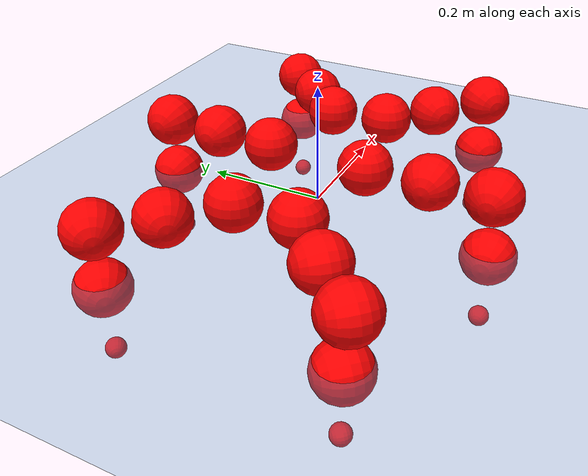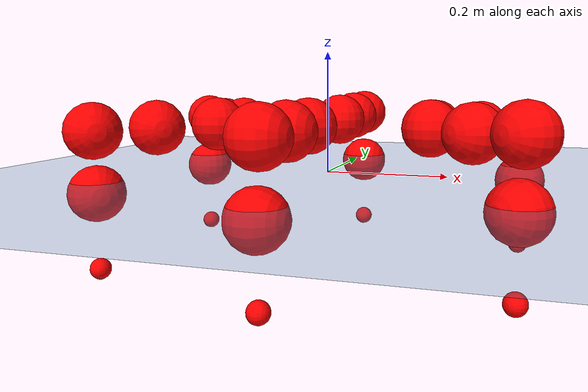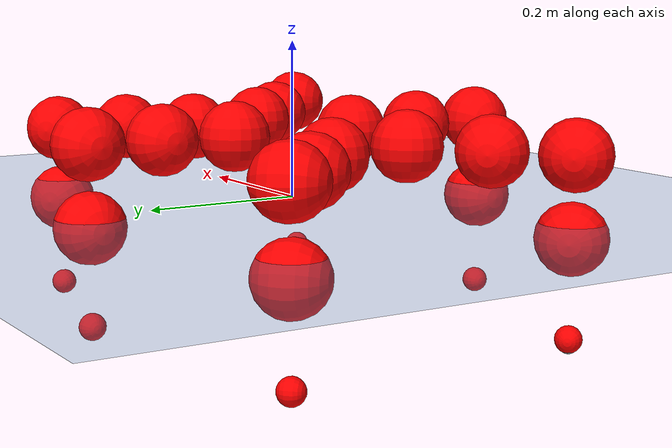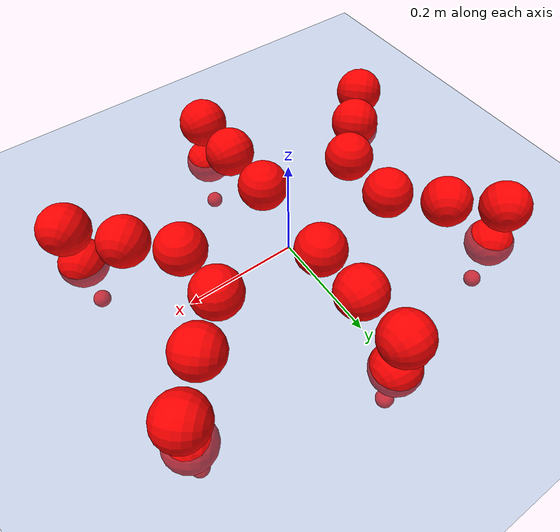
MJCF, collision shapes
<mujoco model="Golem">
  <compiler angle="radian" assetdir="assets" balanceinertia="true" inertiafromgeom="false"/>

  <option timestep="0.005" density="1.2" viscosity="2e-05"/>

  <size nkey="1"/>

  <visual>
    <quality shadowsize="8192"/>
    <map shadowclip="0.5"/>
  </visual>

  <default>
    <default class="/">
      <joint armature="0.01" damping="0.01" frictionloss="0.01"/>
      <geom contype="0" conaffinity="0" group="1" solref="-1000 -80"/>
      <site size="0.01 0.005 0.005" group="5"/>
      <general forcelimited="true" biastype="affine" gainprm="25" biasprm="0 -25 -0.5"/>
      <default class="visual">
        <geom type="mesh" group="2"/>
      </default>
      <default class="collision">
        <geom group="3"/>
      </default>
      <default class="foot">
        <geom size="0.01 0 0" condim="6" group="4" priority="1" solimp="0.015 1 0.01"/>
      </default>
      <default class="reward_collision_sphere">
        <geom group="5" rgba="1 0 0 1"/>
      </default>
    </default>
  </default>

  <asset>
    <texture type="skybox" colorspace="auto" name="//unnamed_texture_0" builtin="gradient" rgb1="0.95 0.95 0.95" rgb2="0.95 0.95 0.95" width="100" height="600"/>
    <texture type="2d" colorspace="auto" name="texplane" builtin="checker" rgb1="0.345 0.575 0.748" rgb2="0.345 0.575 0.748" markrgb="1 1 1" width="512" height="512"/>
    <material name="MatPlane" class="/" texture="texplane" texuniform="true" texrepeat="2 2" specular="0.9"/>
    <mesh name="body" class="/" file="body.stl" scale="0.001 0.001 0.001"/>
    <mesh name="coxa" class="/" file="coxa.stl" scale="0.001 0.001 0.001"/>
    <mesh name="femur" class="/" file="femur.stl" scale="0.001 0.001 0.001"/>
    <mesh name="tibia" class="/" file="tibia.stl" scale="0.001 0.001 0.001"/>
    <mesh name="tarsus" class="/" file="tarsus.stl" scale="0.001 0.001 0.001"/>
  </asset>

  <worldbody>
    <geom name="floor" class="/" size="100 100 0.125" type="plane" group="0" material="MatPlane"/>
    <light name="toplight_shadow" class="/" pos="0 0 5" dir="0.0990148 0.0990148 -0.990148" type="directional" ambient="0.04 0.04 0.04" diffuse="0.55 0.55 0.55" specular="0.12 0.12 0.12"/>
    <light name="toplight_fill" class="/" pos="0 0 5" dir="0.0990148 0.0990148 -0.990148" type="directional" castshadow="false" ambient="0.04 0.04 0.04" diffuse="0.3 0.3 0.3" specular="0.08 0.08 0.08"/>
    <body name="trunk" pos="0.000211202 -0.00241997 0.000859306" quat="0.999999 0.000220852 -0.00125322 -0.000210312">
      <inertial pos="0.00155834 -0.00144203 -0.00288863" quat="0.999955 0.00470216 0.0025753 -0.00788097" mass="5.19206" diaginertia="0.0170221 0.00609666 0.0355611"/>
      <joint name="//unnamed_joint_0" type="free"/>
      <geom name="//unnamed_geom_1" class="/" pos="0 0 0.0825019" quat="1 0 0 0" type="mesh" rgba="0.9 0.9 0.9 1" mesh="body"/>
      <site name="imu" class="/" pos="0.134522 -0.0145954 0.100832" size="0.011065"/>
      <camera name="track" class="/" pos="0 -1.81729 0" quat="0.707107 0.707107 0 0" mode="trackcom"/>
      <camera name="ego_camera" class="/" pos="0.145829 0 0.128909" quat="-0.5 -0.5 0.5 0.5"/>
      <body name="coxa_RR" pos="-0.199154 -0.0763266 0.0814432" quat="0.380434 0.00171779 5.38856e-05 -0.924806">
        <inertial pos="-0.00196606 0.00195629 8.36299e-05" quat="0.999985 -0.00448154 -0.00273159 0.00152795" mass="0.252247" diaginertia="0.0168063 0.00572515 0.0318219"/>
        <joint name="coxa_joint_RR" class="/" pos="0 0 0" axis="-0.00127657 -0.00358308 -0.999993" stiffness="0.00363451" range="-3.1155 3.09791" armature="0.0126121" damping="0" frictionloss="0.0119355"/>
        <geom name="//unnamed_geom_2" class="/" type="mesh" rgba="0.2 0.2 0.2 1" mesh="coxa"/>
        <geom name="//unnamed_geom_3" class="reward_collision_sphere" size="0.04426" pos="-0.0336529 0 0"/>
        <body name="femur_RR" pos="0.0674107 -0.000628773 -0.00224048" quat="0.500947 -0.500373 0.500677 0.497998">
          <inertial pos="0.000358885 -0.00532754 0.00021077" quat="0.999994 0.00220857 -0.00256921 -0.000639727" mass="0.288772" diaginertia="0.0184823 0.00640279 0.0372535"/>
          <joint name="femur_joint_RR" class="/" pos="0 0 0" axis="0.0041534 -0.0088062 -0.999953" stiffness="0.000474381" range="-3.10147 3.10122" armature="0.0094801" damping="0.0201581" frictionloss="0.0112821"/>
          <geom name="//unnamed_geom_4" class="/" type="mesh" rgba="0.9 0.9 0.9 1" mesh="femur"/>
          <geom name="//unnamed_geom_5" class="reward_collision_sphere" size="0.04426"/>
          <body name="tibia_RR" pos="0.00124373 -0.0976165 0.00121035" quat="3.36718e-05 1 -0.00037642 0.000113904">
            <inertial pos="0.000940051 -0.00450618 0.00239982" quat="1 7.44567e-05 -0.000161022 6.8837e-05" mass="0.27391" diaginertia="0.017858 0.00630799 0.035504"/>
            <joint name="tibia_joint_RR" class="/" pos="0 0 0" axis="-0.00646545 0.0191677 0.999795" stiffness="0.0128222" range="-3.22995 3.18508" armature="0.0110807" damping="0.0271974" frictionloss="0.00762524"/>
            <geom name="//unnamed_geom_6" class="/" type="mesh" rgba="0.2 0.2 0.2 1" mesh="tibia"/>
            <geom name="//unnamed_geom_7" class="reward_collision_sphere" size="0.04426"/>
            <body name="tarsus_RR" pos="0.0979082 -0.00207643 0.00492305" quat="1 -5.05925e-05 -5.6521e-06 8.13749e-05">
              <inertial pos="0.0685279 -0.00213467 -0.00142906" quat="0.498934 0.499861 0.502348 0.498849" mass="0.284328" diaginertia="0.0191413 0.00630232 0.0343662"/>
              <joint name="tarsus_joint_RR" class="/" pos="0 0 0" axis="-0.000608208 -0.00394573 0.999992" stiffness="0.00798033" range="-3.14037 3.10225" armature="0.010065" damping="0" frictionloss="0.0123175"/>
              <geom name="//unnamed_geom_8" class="/" type="mesh" rgba="0.9 0.9 0.9 1" mesh="tarsus"/>
              <geom name="foot_1" class="foot" size="0.0123361" pos="0.125637 0 0" quat="0 -0.707107 0 0.707107"/>
              <geom name="//unnamed_geom_10" class="reward_collision_sphere" size="0.04426"/>
              <geom name="//unnamed_geom_11" class="reward_collision_sphere" size="0.0165975" pos="0.12059 0 0"/>
              <site name="foot_1" class="foot" pos="0.125637 0 0" quat="0 -0.707107 0 0.707107" size="0.011065"/>
            </body>
          </body>
        </body>
      </body>
      <body name="coxa_RM" pos="-0.00583115 -0.116217 0.0830914" quat="0.70694 0.000618179 -0.000850618 -0.707273">
        <inertial pos="0.00186117 -0.000524216 0.00307028" quat="0.999612 0.0201973 0.0135812 0.0135219" mass="0.249952" diaginertia="0.0167818 0.00541663 0.0321889"/>
        <joint name="coxa_joint_RM" class="/" pos="0 0 0" axis="-0.00976513 0.023356 -0.99968" range="-3.14713 3.13337" armature="0.00982012" damping="0.0281574" frictionloss="0.0105261"/>
        <geom name="//unnamed_geom_12" class="/" type="mesh" rgba="0.2 0.2 0.2 1" mesh="coxa"/>
        <geom name="//unnamed_geom_13" class="reward_collision_sphere" size="0.04426" pos="-0.0336529 0 0"/>
        <body name="femur_RM" pos="0.0716276 0.00240683 0.000399326" quat="0.500931 -0.499878 0.499924 0.499266">
          <inertial pos="0.000117167 -0.00165111 -0.000491294" quat="0.999927 0.000359616 -0.0118365 0.00237155" mass="0.268815" diaginertia="0.0182837 0.00608683 0.0349851"/>
          <joint name="femur_joint_RM" class="/" pos="0 0 0" axis="4.625e-05 0.00078825 -1" stiffness="0.0151598" range="-3.19232 3.14918" armature="0.0101771" damping="0.0118147" frictionloss="0.00900714"/>
          <geom name="//unnamed_geom_14" class="/" type="mesh" rgba="0.9 0.9 0.9 1" mesh="femur"/>
          <geom name="//unnamed_geom_15" class="reward_collision_sphere" size="0.04426"/>
          <body name="tibia_RM" pos="-0.000838308 -0.097738 -0.000267917" quat="0.00061405 0.999999 -0.000951884 0.000513593">
            <inertial pos="0.00183618 0.00018027 -0.00214307" quat="0.999925 -0.00467372 -0.00377523 0.0106266" mass="0.255424" diaginertia="0.017555 0.00622709 0.0352967"/>
            <joint name="tibia_joint_RM" class="/" pos="0 0 0" axis="-0.00935532 0.0196118 0.999764" range="-3.11505 3.11385" armature="0.0136852" damping="0.0167643" frictionloss="0.00864298"/>
            <geom name="//unnamed_geom_16" class="/" type="mesh" rgba="0.2 0.2 0.2 1" mesh="tibia"/>
            <geom name="//unnamed_geom_17" class="reward_collision_sphere" size="0.04426"/>
            <body name="tarsus_RM" pos="0.105039 0.00453423 0.00256094" quat="1 -0.00030814 -0.000584009 0.000338849">
              <inertial pos="0.0674107 -0.00188062 0.000264679" quat="0.50074 0.499323 0.500164 0.499772" mass="0.249799" diaginertia="0.0165171 0.00587816 0.034023"/>
              <joint name="tarsus_joint_RM" class="/" pos="0 0 0" axis="0.00642182 0.00222942 0.999977" range="-3.10755 3.09023" armature="0.0105873" damping="0" frictionloss="0.0123805"/>
              <geom name="//unnamed_geom_18" class="/" type="mesh" rgba="0.9 0.9 0.9 1" mesh="tarsus"/>
              <geom name="foot_2" class="foot" size="0.0112774" pos="0.125637 0 0" quat="0 -0.707107 0 0.707107"/>
              <geom name="//unnamed_geom_20" class="reward_collision_sphere" size="0.04426"/>
              <geom name="//unnamed_geom_21" class="reward_collision_sphere" size="0.0165975" pos="0.12059 0 0"/>
              <site name="foot_2" class="foot" pos="0.125637 0 0" quat="0 -0.707107 0 0.707107" size="0.011065"/>
            </body>
          </body>
        </body>
      </body>
      <body name="coxa_RF" pos="0.201331 -0.0697263 0.0802539" quat="0.923935 -0.000450599 -1.24883e-05 -0.382548">
        <inertial pos="0.0046715 0.00207764 0.00211826" quat="0.999995 0.000617097 0.0029542 -0.000727715" mass="0.265472" diaginertia="0.0164653 0.00585166 0.0317375"/>
        <joint name="coxa_joint_RF" class="/" pos="0 0 0" axis="0.013979 0.00168728 -0.999901" stiffness="0.015581" range="-3.10273 3.15306" armature="0.00983194" damping="0" frictionloss="0.00891903"/>
        <geom name="//unnamed_geom_22" class="/" type="mesh" rgba="0.2 0.2 0.2 1" mesh="coxa"/>
        <geom name="//unnamed_geom_23" class="reward_collision_sphere" size="0.04426" pos="-0.0336529 0 0"/>
        <body name="femur_RF" pos="0.0623028 0.000111136 -0.000392511" quat="0.499283 -0.500034 0.501048 0.499633">
          <inertial pos="0.00239924 0.00018228 -0.00221142" quat="1 -0.000542184 1.18359e-06 -0.000358107" mass="0.266741" diaginertia="0.0179427 0.00607086 0.0357879"/>
          <joint name="femur_joint_RF" class="/" pos="0 0 0" axis="0.00437519 0.00813159 -0.999957" range="-3.12251 3.12157" armature="0.0117852" damping="0.0140229" frictionloss="0.0122857"/>
          <geom name="//unnamed_geom_24" class="/" type="mesh" rgba="0.9 0.9 0.9 1" mesh="femur"/>
          <geom name="//unnamed_geom_25" class="reward_collision_sphere" size="0.04426"/>
          <body name="tibia_RF" pos="-0.00652651 -0.100548 -0.00281897" quat="0.000641838 1 -4.97067e-05 -0.000390367">
            <inertial pos="0.000369295 0.00411521 0.00245685" quat="0.999826 0.0116334 0.0134987 0.00548015" mass="0.295368" diaginertia="0.0187142 0.00646232 0.0357994"/>
            <joint name="tibia_joint_RF" class="/" pos="0 0 0" axis="-0.00290467 -0.0187913 0.999819" stiffness="0.034411" range="-3.1507 3.15771" armature="0.0117164" damping="0.0385702" frictionloss="0.0112581"/>
            <geom name="//unnamed_geom_26" class="/" type="mesh" rgba="0.2 0.2 0.2 1" mesh="tibia"/>
            <geom name="//unnamed_geom_27" class="reward_collision_sphere" size="0.04426"/>
            <body name="tarsus_RF" pos="0.0993076 -0.00193287 0.00505489" quat="1 -1.94422e-06 -1.25754e-05 -1.72303e-05">
              <inertial pos="0.0701024 0.00242894 -0.0022861" quat="0.496853 0.502134 0.50571 0.495233" mass="0.273043" diaginertia="0.0174108 0.00635694 0.0363078"/>
              <joint name="tarsus_joint_RF" class="/" pos="0 0 0" axis="0.00828592 0.0269009 0.999604" stiffness="0.0037325" range="-3.18684 3.08969" armature="0.0101474" damping="0.00964254" frictionloss="0.0110311"/>
              <geom name="//unnamed_geom_28" class="/" type="mesh" rgba="0.9 0.9 0.9 1" mesh="tarsus"/>
              <geom name="foot_3" class="foot" size="0.0113583" pos="0.125637 0 0" quat="0 -0.707107 0 0.707107"/>
              <geom name="//unnamed_geom_30" class="reward_collision_sphere" size="0.04426"/>
              <geom name="//unnamed_geom_31" class="reward_collision_sphere" size="0.0165975" pos="0.12059 0 0"/>
              <site name="foot_3" class="foot" pos="0.125637 0 0" quat="0 -0.707107 0 0.707107" size="0.011065"/>
            </body>
          </body>
        </body>
      </body>
      <body name="coxa_LR" pos="-0.199191 0.0771785 0.0780206" quat="0.381783 0.00129399 -6.03795e-06 0.924251">
        <inertial pos="-0.000441442 -0.00273144 0.00326226" quat="0.999926 0.0103022 -0.00187092 -0.00623364" mass="0.274286" diaginertia="0.0178533 0.00647214 0.0365361"/>
        <joint name="coxa_joint_LR" class="/" pos="0 0 0" axis="-0.00346485 0.00926958 -0.999951" range="-3.15707 3.05909" armature="0.0114883" damping="0.0159731" frictionloss="0.0101845"/>
        <geom name="//unnamed_geom_32" class="/" type="mesh" rgba="0.2 0.2 0.2 1" mesh="coxa"/>
        <geom name="//unnamed_geom_33" class="reward_collision_sphere" size="0.04426" pos="-0.0336529 0 0"/>
        <body name="femur_LR" pos="0.0686434 -0.000749593 -0.00386051" quat="0.499822 -0.500357 0.499556 0.500265">
          <inertial pos="0.00206506 -0.00157134 0.0017858" quat="0.999716 0.0174522 -0.015005 -0.00624099" mass="0.260252" diaginertia="0.016812 0.00586172 0.0349392"/>
          <joint name="femur_joint_LR" class="/" pos="0 0 0" axis="0.0254086 -0.0213121 0.99945" range="-3.15275 3.16801" armature="0.00792127" damping="0.0129345" frictionloss="0.0112523"/>
          <geom name="//unnamed_geom_34" class="/" type="mesh" rgba="0.9 0.9 0.9 1" mesh="femur"/>
          <geom name="//unnamed_geom_35" class="reward_collision_sphere" size="0.04426"/>
          <body name="tibia_LR" pos="-0.00331306 -0.0978979 0.00158856" quat="0.000584386 1 -0.000672334 2.3233e-07">
            <inertial pos="-0.000299026 0.00182778 -0.00228558" quat="0.999978 0.000905087 -0.00336639 -0.00568661" mass="0.265825" diaginertia="0.0188501 0.00644627 0.0360914"/>
            <joint name="tibia_joint_LR" class="/" pos="0 0 0" axis="-0.000433464 -0.00566129 -0.999984" stiffness="0.00280136" range="-3.2356 3.10525" armature="0.0125273" damping="0.0105059" frictionloss="0.0112184"/>
            <geom name="//unnamed_geom_36" class="/" type="mesh" rgba="0.2 0.2 0.2 1" mesh="tibia"/>
            <geom name="//unnamed_geom_37" class="reward_collision_sphere" size="0.04426"/>
            <body name="tarsus_LR" pos="0.101779 0.000299387 -0.00194004" quat="1 -8.36944e-05 8.5235e-05 -6.0368e-05">
              <inertial pos="0.0672289 0.00347475 0.0025726" quat="0.499821 0.499038 0.500543 0.500597" mass="0.278478" diaginertia="0.0173897 0.00558778 0.0348665"/>
              <joint name="tarsus_joint_LR" class="/" pos="0 0 0" axis="-0.00185508 0.00275454 -0.999994" range="-3.18912 3.12973" armature="0.0108974" damping="0.0138369" frictionloss="0.0112502"/>
              <geom name="//unnamed_geom_38" class="/" type="mesh" rgba="0.9 0.9 0.9 1" mesh="tarsus"/>
              <geom name="foot_4" class="foot" size="0.0109532" pos="0.125637 0 0" quat="0.707107 0 -0.707107 0"/>
              <geom name="//unnamed_geom_40" class="reward_collision_sphere" size="0.04426"/>
              <geom name="//unnamed_geom_41" class="reward_collision_sphere" size="0.0165975" pos="0.12059 0 0"/>
              <site name="foot_4" class="foot" pos="0.125637 0 0" quat="0.707107 0 -0.707107 0" size="0.011065"/>
            </body>
          </body>
        </body>
      </body>
      <body name="coxa_LM" pos="-0.00255583 0.121041 0.0832869" quat="0.70678 -0.0011389 0.000387228 0.707433">
        <inertial pos="0.000981177 0.000597916 0.00452649" quat="0.999925 -0.00196351 -0.00138909 0.0119755" mass="0.273672" diaginertia="0.0184316 0.00638708 0.0369329"/>
        <joint name="coxa_joint_LM" class="/" pos="0 0 0" axis="0.000302896 -0.000209802 -1" stiffness="0.0118373" range="-3.18938 3.11958" armature="0.0121476" damping="0.0224266" frictionloss="0.0108784"/>
        <geom name="//unnamed_geom_42" class="/" type="mesh" rgba="0.2 0.2 0.2 1" mesh="coxa"/>
        <geom name="//unnamed_geom_43" class="reward_collision_sphere" size="0.04426" pos="-0.0336529 0 0"/>
        <body name="femur_LM" pos="0.0656597 -0.000123613 0.00191074" quat="0.499381 -0.50062 0.499594 0.500404">
          <inertial pos="0.00173004 -0.00137925 0.00589577" quat="0.999955 0.00487513 -0.00797508 0.00180413" mass="0.276337" diaginertia="0.0176047 0.00630471 0.0355879"/>
          <joint name="femur_joint_LM" class="/" pos="0 0 0" axis="0.000440034 0.000264119 1" stiffness="0.00513533" range="-3.09382 3.24962" armature="0.0112951" damping="0.0304179" frictionloss="0.0126968"/>
          <geom name="//unnamed_geom_44" class="/" type="mesh" rgba="0.9 0.9 0.9 1" mesh="femur"/>
          <geom name="//unnamed_geom_45" class="reward_collision_sphere" size="0.04426"/>
          <body name="tibia_LM" pos="-0.00144686 -0.0970946 0.000854861" quat="-0.000281614 1 0.000203683 1.67914e-05">
            <inertial pos="0.000964455 0.000288645 0.000816194" quat="0.999926 -0.00308995 0.00542371 0.0104169" mass="0.292087" diaginertia="0.0192205 0.00673713 0.038751"/>
            <joint name="tibia_joint_LM" class="/" pos="0 0 0" axis="0.00471906 0.0136847 -0.999895" stiffness="0.0110467" range="-3.19316 3.1323" armature="0.00743508" damping="0.0357191" frictionloss="0.00964195"/>
            <geom name="//unnamed_geom_46" class="/" type="mesh" rgba="0.2 0.2 0.2 1" mesh="tibia"/>
            <geom name="//unnamed_geom_47" class="reward_collision_sphere" size="0.04426"/>
            <body name="tarsus_LM" pos="0.10007 -0.000547427 -0.000335937" quat="1 1.08174e-05 3.17977e-05 -3.58433e-05">
              <inertial pos="0.0663153 0.00220059 -4.6356e-05" quat="0.498495 0.500154 0.500454 0.500895" mass="0.290804" diaginertia="0.0186008 0.00721448 0.037557"/>
              <joint name="tarsus_joint_LM" class="/" pos="0 0 0" axis="-0.000591828 -0.000591262 -1" range="-3.14466 3.14848" armature="0.00983444" damping="0" frictionloss="0.00808094"/>
              <geom name="//unnamed_geom_48" class="/" type="mesh" rgba="0.9 0.9 0.9 1" mesh="tarsus"/>
              <geom name="foot_5" class="foot" size="0.0110409" pos="0.125637 0 0" quat="0.707107 0 -0.707107 0"/>
              <geom name="//unnamed_geom_50" class="reward_collision_sphere" size="0.04426"/>
              <geom name="//unnamed_geom_51" class="reward_collision_sphere" size="0.0165975" pos="0.12059 0 0"/>
              <site name="foot_5" class="foot" pos="0.125637 0 0" quat="0.707107 0 -0.707107 0" size="0.011065"/>
            </body>
          </body>
        </body>
      </body>
      <body name="coxa_LF" pos="0.196125 0.0795768 0.0763971" quat="0.923799 -0.000447329 -0.000296203 0.382878">
        <inertial pos="0.00449424 0.00606888 0.00145832" quat="0.999946 0.00635892 0.00446095 -0.00685628" mass="0.278228" diaginertia="0.0182474 0.00684622 0.0356933"/>
        <joint name="coxa_joint_LF" class="/" pos="0 0 0" axis="-0.0192895 0.0117463 -0.999745" range="-3.13815 3.14432" armature="0.0121799" damping="0.021432" frictionloss="0.0121679"/>
        <geom name="//unnamed_geom_52" class="/" type="mesh" rgba="0.2 0.2 0.2 1" mesh="coxa"/>
        <geom name="//unnamed_geom_53" class="reward_collision_sphere" size="0.04426" pos="-0.0336529 0 0"/>
        <body name="femur_LF" pos="0.0642893 -0.00381716 -0.00360937" quat="0.50014 -0.500775 0.49952 0.499563">
          <inertial pos="-0.00083557 0.000166566 0.00192473" quat="1 -0.000337634 -0.00059051 -1.04372e-06" mass="0.289708" diaginertia="0.0196773 0.00648857 0.0370814"/>
          <joint name="femur_joint_LF" class="/" pos="0 0 0" axis="0.0136235 -0.0151649 0.999792" stiffness="0.00487483" range="-3.15345 3.09419" armature="0.012475" damping="0.00830602" frictionloss="0.0108843"/>
          <geom name="//unnamed_geom_54" class="/" type="mesh" rgba="0.9 0.9 0.9 1" mesh="femur"/>
          <geom name="//unnamed_geom_55" class="reward_collision_sphere" size="0.04426"/>
          <body name="tibia_LF" pos="0.00525123 -0.0991887 0.00324912" quat="0.000120714 1 -4.04603e-05 2.00439e-05">
            <inertial pos="-0.000501476 -0.00380886 -0.000282057" quat="0.999966 0.00677369 0.00206719 0.00430762" mass="0.260993" diaginertia="0.0175147 0.00594975 0.0347127"/>
            <joint name="tibia_joint_LF" class="/" pos="0 0 0" axis="0.00384448 0.00331351 -0.999987" stiffness="0.0317854" range="-3.10667 3.18561" armature="0.0101997" damping="0.0269007" frictionloss="0.0122712"/>
            <geom name="//unnamed_geom_56" class="/" type="mesh" rgba="0.2 0.2 0.2 1" mesh="tibia"/>
            <geom name="//unnamed_geom_57" class="reward_collision_sphere" size="0.04426"/>
            <body name="tarsus_LF" pos="0.098112 -0.00187595 0.00192834" quat="1 -3.20701e-05 -0.000146302 0.000184923">
              <inertial pos="0.0734886 0.00290614 -0.0023575" quat="0.482946 0.518739 0.485004 0.512293" mass="0.269251" diaginertia="0.018301 0.00630932 0.0349877"/>
              <joint name="tarsus_joint_LF" class="/" pos="0 0 0" axis="-0.0306906 0.0136401 -0.999436" stiffness="0.0125923" range="-3.12818 3.16979" armature="0.0109476" damping="0.0212245" frictionloss="0.0106223"/>
              <geom name="//unnamed_geom_58" class="/" type="mesh" rgba="0.9 0.9 0.9 1" mesh="tarsus"/>
              <geom name="foot_6" class="foot" size="0.0103875" pos="0.125637 0 0" quat="0.707107 0 -0.707107 0"/>
              <geom name="//unnamed_geom_60" class="reward_collision_sphere" size="0.04426"/>
              <geom name="//unnamed_geom_61" class="reward_collision_sphere" size="0.0165975" pos="0.12059 0 0"/>
              <site name="foot_6" class="foot" pos="0.125637 0 0" quat="0.707107 0 -0.707107 0" size="0.011065"/>
            </body>
          </body>
        </body>
      </body>
    </body>
  </worldbody>

  <contact>
    <pair class="/" geom1="floor" geom2="foot_1" name="//unnamed_contact_0"/>
    <pair class="/" geom1="floor" geom2="foot_2" name="//unnamed_contact_1"/>
    <pair class="/" geom1="floor" geom2="foot_3" name="//unnamed_contact_2"/>
    <pair class="/" geom1="floor" geom2="foot_4" name="//unnamed_contact_3"/>
    <pair class="/" geom1="floor" geom2="foot_5" name="//unnamed_contact_4"/>
    <pair class="/" geom1="floor" geom2="foot_6" name="//unnamed_contact_5"/>
  </contact>

  <actuator>
    <general name="coxa_joint_RR" class="/" joint="coxa_joint_RR" forcerange="-8.16326 8.16326" gainprm="26.7751" biasprm="0 -26.7751 -0.576162"/>
    <general name="femur_joint_RR" class="/" joint="femur_joint_RR" forcerange="-8.74778 8.74778" gainprm="26.7751" biasprm="0 -26.7751 -0.576162"/>
    <general name="tibia_joint_RR" class="/" joint="tibia_joint_RR" forcerange="-8.29961 8.29961" gainprm="26.7751" biasprm="0 -26.7751 -0.576162"/>
    <general name="tarsus_joint_RR" class="/" joint="tarsus_joint_RR" forcerange="-7.29816 7.29816" gainprm="26.7751" biasprm="0 -26.7751 -0.576162"/>
    <general name="coxa_joint_RM" class="/" joint="coxa_joint_RM" forcerange="-7.65093 7.65093" gainprm="26.7751" biasprm="0 -26.7751 -0.576162"/>
    <general name="femur_joint_RM" class="/" joint="femur_joint_RM" forcerange="-7.26922 7.26922" gainprm="26.7751" biasprm="0 -26.7751 -0.576162"/>
    <general name="tibia_joint_RM" class="/" joint="tibia_joint_RM" forcerange="-8.70905 8.70905" gainprm="26.7751" biasprm="0 -26.7751 -0.576162"/>
    <general name="tarsus_joint_RM" class="/" joint="tarsus_joint_RM" forcerange="-8.42475 8.42475" gainprm="26.7751" biasprm="0 -26.7751 -0.576162"/>
    <general name="coxa_joint_RF" class="/" joint="coxa_joint_RF" forcerange="-8.84837 8.84837" gainprm="26.7751" biasprm="0 -26.7751 -0.576162"/>
    <general name="femur_joint_RF" class="/" joint="femur_joint_RF" forcerange="-8.78408 8.78408" gainprm="26.7751" biasprm="0 -26.7751 -0.576162"/>
    <general name="tibia_joint_RF" class="/" joint="tibia_joint_RF" forcerange="-8.6003 8.6003" gainprm="26.7751" biasprm="0 -26.7751 -0.576162"/>
    <general name="tarsus_joint_RF" class="/" joint="tarsus_joint_RF" forcerange="-8.80966 8.80966" gainprm="26.7751" biasprm="0 -26.7751 -0.576162"/>
    <general name="coxa_joint_LR" class="/" joint="coxa_joint_LR" forcerange="-7.92355 7.92355" gainprm="26.7751" biasprm="0 -26.7751 -0.576162"/>
    <general name="femur_joint_LR" class="/" joint="femur_joint_LR" forcerange="-8.03719 8.03719" gainprm="26.7751" biasprm="0 -26.7751 -0.576162"/>
    <general name="tibia_joint_LR" class="/" joint="tibia_joint_LR" forcerange="-7.47468 7.47468" gainprm="26.7751" biasprm="0 -26.7751 -0.576162"/>
    <general name="tarsus_joint_LR" class="/" joint="tarsus_joint_LR" forcerange="-8.41892 8.41892" gainprm="26.7751" biasprm="0 -26.7751 -0.576162"/>
    <general name="coxa_joint_LM" class="/" joint="coxa_joint_LM" forcerange="-7.34882 7.34882" gainprm="26.7751" biasprm="0 -26.7751 -0.576162"/>
    <general name="femur_joint_LM" class="/" joint="femur_joint_LM" forcerange="-7.33772 7.33772" gainprm="26.7751" biasprm="0 -26.7751 -0.576162"/>
    <general name="tibia_joint_LM" class="/" joint="tibia_joint_LM" forcerange="-8.19442 8.19442" gainprm="26.7751" biasprm="0 -26.7751 -0.576162"/>
    <general name="tarsus_joint_LM" class="/" joint="tarsus_joint_LM" forcerange="-8.46957 8.46957" gainprm="26.7751" biasprm="0 -26.7751 -0.576162"/>
    <general name="coxa_joint_LF" class="/" joint="coxa_joint_LF" forcerange="-7.9906 7.9906" gainprm="26.7751" biasprm="0 -26.7751 -0.576162"/>
    <general name="femur_joint_LF" class="/" joint="femur_joint_LF" forcerange="-7.94382 7.94382" gainprm="26.7751" biasprm="0 -26.7751 -0.576162"/>
    <general name="tibia_joint_LF" class="/" joint="tibia_joint_LF" forcerange="-7.86432 7.86432" gainprm="26.7751" biasprm="0 -26.7751 -0.576162"/>
    <general name="tarsus_joint_LF" class="/" joint="tarsus_joint_LF" forcerange="-7.83395 7.83395" gainprm="26.7751" biasprm="0 -26.7751 -0.576162"/>
  </actuator>

  <sensor>
    <gyro site="imu" name="imu_angular_velocity"/>
    <velocimeter site="imu" name="imu_linear_velocity"/>
    <framelinvel objtype="site" objname="foot_1" name="foot_1_global_linear_velocity"/>
    <framelinvel objtype="site" objname="foot_2" name="foot_2_global_linear_velocity"/>
    <framelinvel objtype="site" objname="foot_3" name="foot_3_global_linear_velocity"/>
    <framelinvel objtype="site" objname="foot_4" name="foot_4_global_linear_velocity"/>
    <framelinvel objtype="site" objname="foot_5" name="foot_5_global_linear_velocity"/>
    <framelinvel objtype="site" objname="foot_6" name="foot_6_global_linear_velocity"/>
  </sensor>

  <keyframe>
    <key name="home" qpos="0 0 0.1457 1 0 0 0 0 0 0 0 0 0 0 0 0 0 0 0 0 0 0 0 0 0 0 0 0 0 0 0"/>
  </keyframe>
</mujoco>
